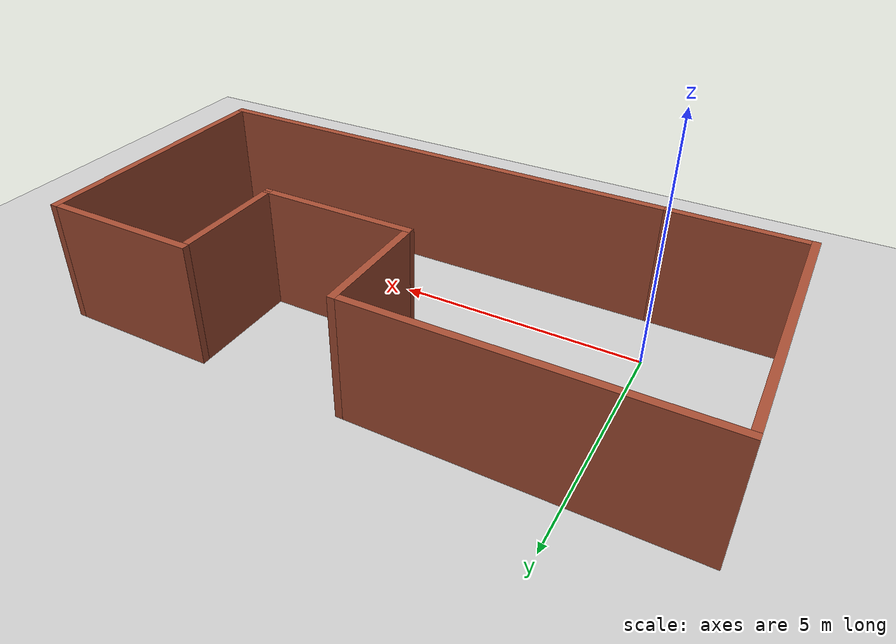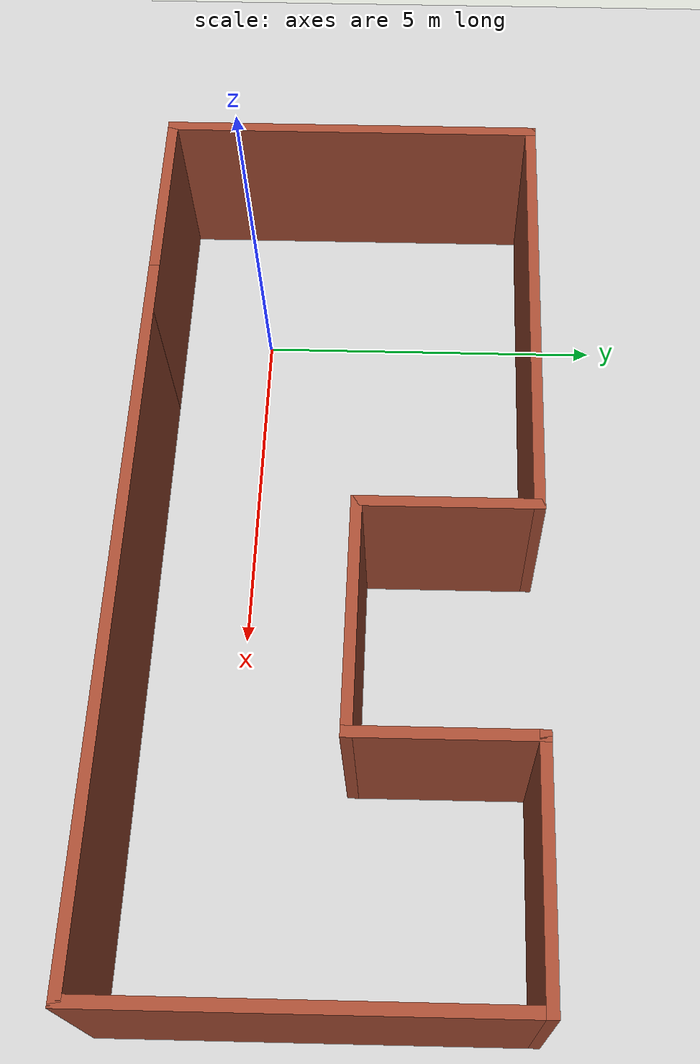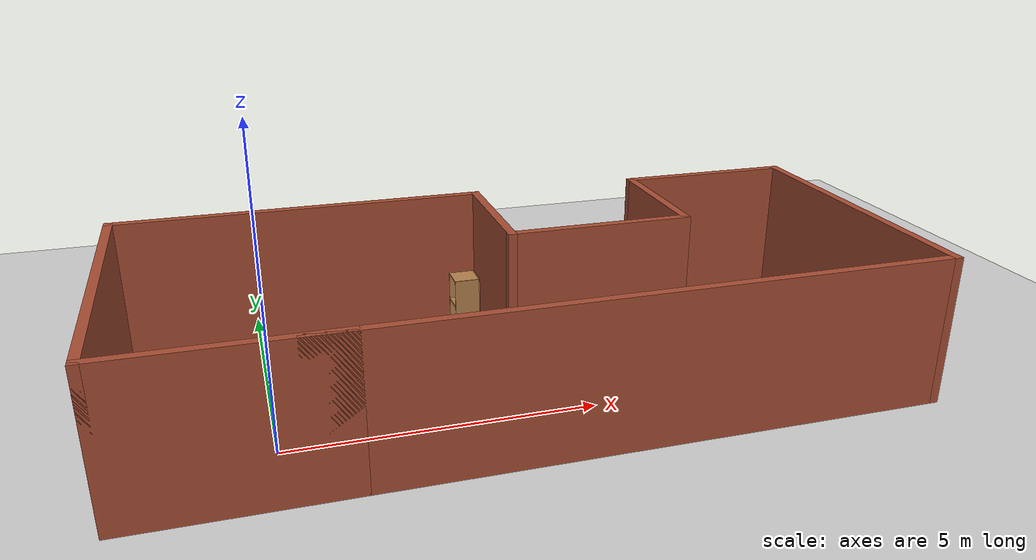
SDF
<sdf version="1.7">
 <world name="default">
  <light name="sun" type="directional">
   <pose>0 0 10 0 -0 0</pose>
   <diffuse>0.8 0.8 0.8 1</diffuse>
   <specular>0.2 0.2 0.2 1</specular>
   <attenuation>
    <range>1000</range>
    <constant>0.9</constant>
    <linear>0.01</linear>
    <quadratic>0.001</quadratic>
   </attenuation>
   <direction>-0.5 0.1 -0.9</direction>
   <spot><inner_angle>0</inner_angle><outer_angle>0</outer_angle><falloff>0</falloff></spot>
  </light>
  <model name="ground_plane">
   <static>1</static>
   <link name="link">
    <collision name="collision">
     <geometry><plane><normal>0 0 1</normal><size>100 100</size></plane></geometry>
     <surface>
      <contact><collide_bitmask>65535</collide_bitmask></contact>
      <friction><ode><mu>100</mu><mu2>50</mu2></ode></friction>
     </surface>
    </collision>
    <visual name="visual">
     <cast_shadows>0</cast_shadows>
     <geometry><plane><normal>0 0 1</normal><size>100 100</size></plane></geometry>
     <material>
      <script><uri>file://media/materials/scripts/gazebo.material</uri><name>Gazebo/Grey</name></script>
     </material>
    </visual>
   </link>
  </model>
  <gravity>0 0 -9.8</gravity>
  <magnetic_field>6e-06 2.3e-05 -4.2e-05</magnetic_field>
  <atmosphere type="adiabatic"/>
  <physics type="ode">
   <max_step_size>0.001</max_step_size>
   <real_time_factor>1</real_time_factor>
   <real_time_update_rate>1000</real_time_update_rate>
  </physics>
  <scene><ambient>0.4 0.4 0.4 1</ambient><background>0.7 0.7 0.7 1</background><shadows>1</shadows></scene>
  <spherical_coordinates>
   <surface_model>EARTH_WGS84</surface_model>
   <latitude_deg>0</latitude_deg>
   <longitude_deg>0</longitude_deg>
   <elevation>0</elevation>
   <heading_deg>0</heading_deg>
  </spherical_coordinates>
  <model name="Untitled">
   <pose>4.00042 1.26418 0 0 -0 0</pose>
   <link name="Wall_14">
    <collision name="Wall_14_Collision">
     <geometry><box><size>10 0.15 2.5</size></box></geometry>
     <pose>0 0 1.25 0 -0 0</pose>
    </collision>
    <visual name="Wall_14_Visual">
     <pose>0 0 1.25 0 -0 0</pose>
     <geometry><box><size>10 0.15 2.5</size></box></geometry>
     <material>
      <script><uri>file://media/materials/scripts/gazebo.material</uri><name>Gazebo/Bricks</name></script>
      <ambient>1 1 1 1</ambient>
     </material>
     <meta><layer>0</layer></meta>
    </visual>
    <pose>1.35 -2.675 0 0 -0 0</pose>
   </link>
   <link name="Wall_15">
    <collision name="Wall_15_Collision">
     <geometry><box><size>5.5 0.15 2.5</size></box></geometry>
     <pose>0 0 1.25 0 -0 0</pose>
    </collision>
    <visual name="Wall_15_Visual">
     <pose>0 0 1.25 0 -0 0</pose>
     <geometry><box><size>5.5 0.15 2.5</size></box></geometry>
     <material>
      <script><uri>file://media/materials/scripts/gazebo.material</uri><name>Gazebo/Bricks</name></script>
      <ambient>1 1 1 1</ambient>
     </material>
     <meta><layer>0</layer></meta>
    </visual>
    <pose>6.275 -0 0 0 -0 1.5708</pose>
   </link>
   <link name="Wall_16">
    <collision name="Wall_16_Collision">
     <geometry><box><size>3.25 0.15 2.5</size></box></geometry>
     <pose>0 0 1.25 0 -0 0</pose>
    </collision>
    <visual name="Wall_16_Visual">
     <pose>0 0 1.25 0 -0 0</pose>
     <geometry><box><size>3.25 0.15 2.5</size></box></geometry>
     <material>
      <script><uri>file://media/materials/scripts/gazebo.material</uri><name>Gazebo/Bricks</name></script>
      <ambient>1 1 1 1</ambient>
     </material>
     <meta><layer>0</layer></meta>
    </visual>
    <pose>4.725 2.675 0 0 -0 3.14159</pose>
   </link>
   <link name="Wall_17">
    <collision name="Wall_17_Collision">
     <geometry><box><size>2.5 0.15 2.5</size></box></geometry>
     <pose>0 0 1.25 0 -0 0</pose>
    </collision>
    <visual name="Wall_17_Visual">
     <pose>0 0 1.25 0 -0 0</pose>
     <geometry><box><size>2.5 0.15 2.5</size></box></geometry>
     <material>
      <script><uri>file://media/materials/scripts/gazebo.material</uri><name>Gazebo/Bricks</name></script>
      <ambient>1 1 1 1</ambient>
     </material>
     <meta><layer>0</layer></meta>
    </visual>
    <pose>3.175 1.5 0 0 -0 -1.5708</pose>
   </link>
   <link name="Wall_18">
    <collision name="Wall_18_Collision">
     <geometry><box><size>3.25 0.15 2.5</size></box></geometry>
     <pose>0 0 1.25 0 -0 0</pose>
    </collision>
    <visual name="Wall_18_Visual">
     <pose>0 0 1.25 0 -0 0</pose>
     <geometry><box><size>3.25 0.15 2.5</size></box></geometry>
     <material>
      <script><uri>file://media/materials/scripts/gazebo.material</uri><name>Gazebo/Bricks</name></script>
      <ambient>1 1 1 1</ambient>
     </material>
     <meta><layer>0</layer></meta>
    </visual>
    <pose>1.625 0.325 0 0 -0 3.14159</pose>
   </link>
   <link name="Wall_19">
    <collision name="Wall_19_Collision">
     <geometry><box><size>2.5 0.15 2.5</size></box></geometry>
     <pose>0 0 1.25 0 -0 0</pose>
    </collision>
    <visual name="Wall_19_Visual">
     <pose>0 0 1.25 0 -0 0</pose>
     <geometry><box><size>2.5 0.15 2.5</size></box></geometry>
     <material>
      <script><uri>file://media/materials/scripts/gazebo.material</uri><name>Gazebo/Bricks</name></script>
      <ambient>1 1 1 1</ambient>
     </material>
     <meta><layer>0</layer></meta>
    </visual>
    <pose>0.075 1.5 0 0 -0 1.5708</pose>
   </link>
   <link name="Wall_20">
    <collision name="Wall_20_Collision">
     <geometry><box><size>6.5 0.15 2.5</size></box></geometry>
     <pose>0 0 1.25 0 -0 0</pose>
    </collision>
    <visual name="Wall_20_Visual">
     <pose>0 0 1.25 0 -0 0</pose>
     <geometry><box><size>6.5 0.15 2.5</size></box></geometry>
     <material>
      <script><uri>file://media/materials/scripts/gazebo.material</uri><name>Gazebo/Bricks</name></script>
      <ambient>1 1 1 1</ambient>
     </material>
     <meta><layer>0</layer></meta>
    </visual>
    <pose>-3.1 2.675 0 0 -0 3.14159</pose>
   </link>
   <link name="Wall_21">
    <collision name="Wall_21_Collision">
     <geometry><box><size>5.5 0.15 2.5</size></box></geometry>
     <pose>0 0 1.25 0 -0 0</pose>
    </collision>
    <visual name="Wall_21_Visual">
     <pose>0 0 1.25 0 -0 0</pose>
     <geometry><box><size>5.5 0.15 2.5</size></box></geometry>
     <material>
      <script><uri>file://media/materials/scripts/gazebo.material</uri><name>Gazebo/Bricks</name></script>
      <ambient>1 1 1 1</ambient>
     </material>
     <meta><layer>0</layer></meta>
    </visual>
    <pose>-6.275 -0 0 0 -0 -1.5708</pose>
   </link>
   <link name="Wall_22">
    <collision name="Wall_22_Collision">
     <geometry><box><size>3.5 0.15 2.5</size></box></geometry>
     <pose>0 0 1.25 0 -0 0</pose>
    </collision>
    <visual name="Wall_22_Visual">
     <pose>0 0 1.25 0 -0 0</pose>
     <geometry><box><size>3.5 0.15 2.5</size></box></geometry>
     <material>
      <script><uri>file://media/materials/scripts/gazebo.material</uri><name>Gazebo/Bricks</name></script>
      <ambient>1 1 1 1</ambient>
     </material>
     <meta><layer>0</layer></meta>
    </visual>
    <pose>-4.6 -2.675 0 0 -0 0</pose>
   </link>
   <static>1</static>
  </model>
  <model name="cabinet">
   <static>1</static>
   <link name="cabinet_bottom_plate">
    <inertial>
     <pose>0 0 -1 0 -0 0</pose>
     <inertia><ixx>2.05</ixx><ixy>0</ixy><ixz>0</ixz><iyy>2.05</iyy><iyz>0</iyz><izz>2.05</izz></inertia>
     <mass>25</mass>
    </inertial>
    <collision name="cabinet_bottom_plate_geom">
     <pose>0 0 0.01 0 -0 0</pose>
     <geometry><box><size>0.45 0.45 0.02</size></box></geometry>
    </collision>
    <visual name="cabinet_bottom_plate_geom_visual">
     <pose>0 0 0.01 0 -0 0</pose>
     <geometry><box><size>0.45 0.45 0.02</size></box></geometry>
     <material>
      <script><uri>file://media/materials/scripts/gazebo.material</uri><name>Gazebo/Wood</name></script>
     </material>
    </visual>
    <collision name="cabinet_bottom_plate_geom_cabinet_back_plate">
     <pose>0.235 0 0.51 0 -0 0</pose>
     <geometry><box><size>0.02 0.45 1.02</size></box></geometry>
    </collision>
    <visual name="cabinet_bottom_plate_geom_cabinet_back_plate_visual">
     <pose>0.235 0 0.51 0 -0 0</pose>
     <geometry><box><size>0.02 0.45 1.02</size></box></geometry>
     <material>
      <script><uri>file://media/materials/scripts/gazebo.material</uri><name>Gazebo/Wood</name></script>
     </material>
    </visual>
    <collision name="cabinet_bottom_plate_geom_cabinet_left_plate">
     <pose>0 0.235 0.51 0 -0 0</pose>
     <geometry><box><size>0.45 0.02 1.02</size></box></geometry>
    </collision>
    <visual name="cabinet_bottom_plate_geom_cabinet_left_plate_visual">
     <pose>0 0.235 0.51 0 -0 0</pose>
     <geometry><box><size>0.45 0.02 1.02</size></box></geometry>
     <material>
      <script><uri>file://media/materials/scripts/gazebo.material</uri><name>Gazebo/Wood</name></script>
     </material>
    </visual>
    <collision name="cabinet_bottom_plate_geom_cabinet_middle_plate">
     <pose>0 0 0.51 0 -0 0</pose>
     <geometry><box><size>0.45 0.45 0.02</size></box></geometry>
    </collision>
    <visual name="cabinet_bottom_plate_geom_cabinet_middle_plate_visual">
     <pose>0 0 0.51 0 -0 0</pose>
     <geometry><box><size>0.45 0.45 0.02</size></box></geometry>
     <material>
      <script><uri>file://media/materials/scripts/gazebo.material</uri><name>Gazebo/Wood</name></script>
     </material>
    </visual>
    <collision name="cabinet_bottom_plate_geom_cabinet_right_plate">
     <pose>0 -0.235 0.51 0 -0 0</pose>
     <geometry><box><size>0.45 0.02 1.02</size></box></geometry>
    </collision>
    <visual name="cabinet_bottom_plate_geom_cabinet_right_plate_visual">
     <pose>0 -0.235 0.51 0 -0 0</pose>
     <geometry><box><size>0.45 0.02 1.02</size></box></geometry>
     <material>
      <script><uri>file://media/materials/scripts/gazebo.material</uri><name>Gazebo/Wood</name></script>
     </material>
    </visual>
    <collision name="cabinet_bottom_plate_geom_cabinet_top_plate">
     <pose>0 0 1.01 0 -0 0</pose>
     <geometry><box><size>0.45 0.45 0.02</size></box></geometry>
    </collision>
    <visual name="cabinet_bottom_plate_geom_cabinet_top_plate_visual">
     <pose>0 0 1.01 0 -0 0</pose>
     <geometry><box><size>0.45 0.45 0.02</size></box></geometry>
     <material>
      <script><uri>file://media/materials/scripts/gazebo.material</uri><name>Gazebo/Wood</name></script>
     </material>
    </visual>
   </link>
   <pose>3.74156 3.59589 0 0 -0 0</pose>
  </model>
 </world>
</sdf>
